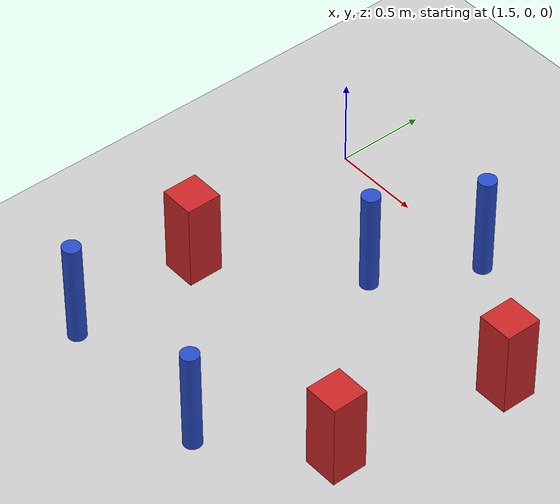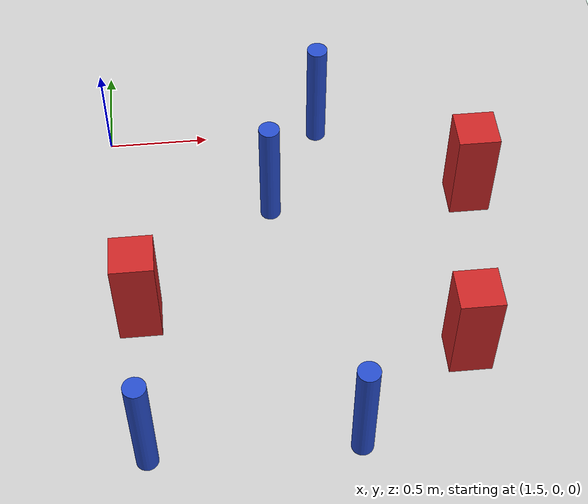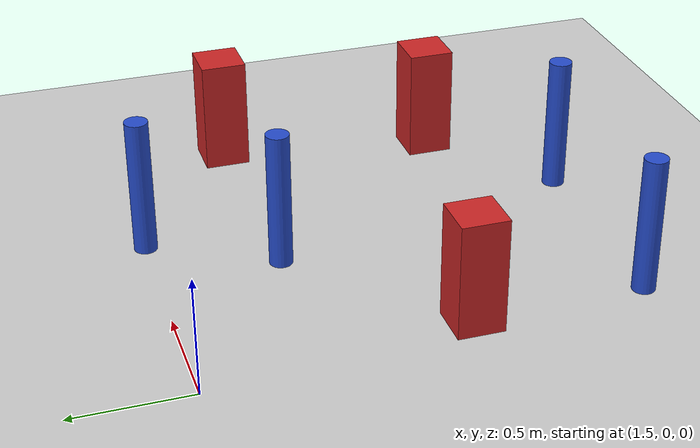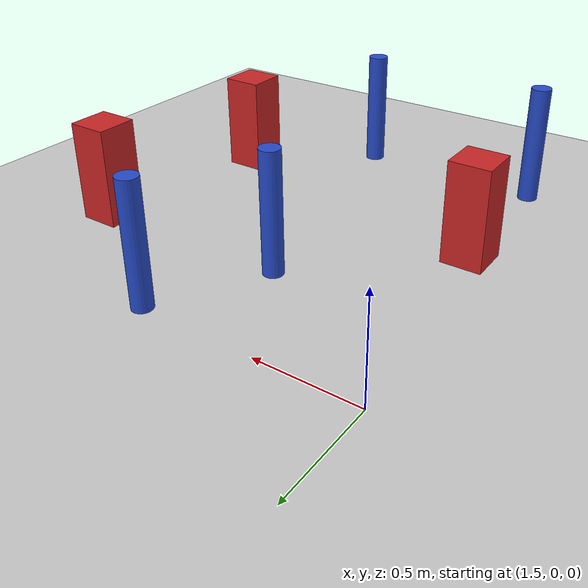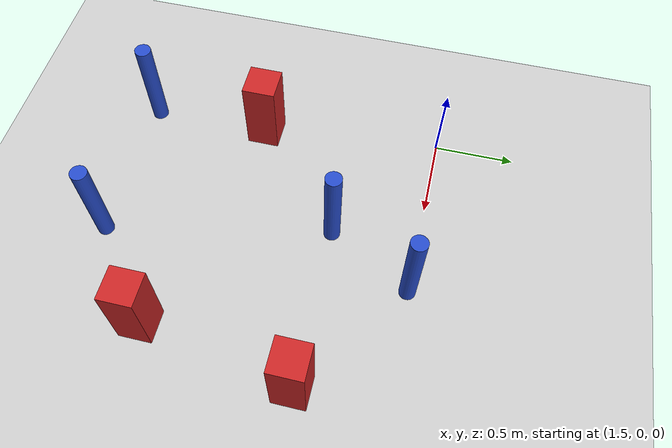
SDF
<sdf version="1.6">
 <world name="default">
  <model name="ground_plane">
   <static>1</static>
   <link name="link">
    <collision name="collision">
     <geometry><plane><normal>0 0 1</normal><size>100 100</size></plane></geometry>
     <surface><friction><ode><mu>100</mu><mu2>50</mu2></ode></friction></surface>
    </collision>
    <visual name="visual">
     <cast_shadows>0</cast_shadows>
     <geometry><plane><normal>0 0 1</normal><size>100 100</size></plane></geometry>
     <material>
      <ambient>1.0 1.0 1.0 1.0</ambient>
      <diffuse>0.8 0.8 0.8 1.0</diffuse>
      <specular>0.01 0.01 0.01 1.000000</specular>
     </material>
    </visual>
   </link>
  </model>
  <model name="pole_obstacle27">
   <static>true</static>
   <pose>2.58216904432 -1.89217607525 7.38925637345e-09 -8.471706928e-08 1.24976765152e-08 -1.74513093012e-07</pose>
   <link name="link">
    <pose>0 0 0.3 0 -0 0</pose>
    <inertial>
     <mass>1</mass>
     <inertia><ixx>0.145833</ixx><ixy>0</ixy><ixz>0</ixz><iyy>0.145833</iyy><iyz>0</iyz><izz>0.125</izz></inertia>
    </inertial>
    <collision name="collision">
     <geometry><cylinder><radius>0.05</radius><length>.6</length></cylinder></geometry>
    </collision>
    <visual name="visual">
     <geometry><cylinder><radius>0.05</radius><length>.6</length></cylinder></geometry>
     <material>
      <script><name>Gazebo/Blue</name><uri>file://media/materials/scripts/gazebo.material</uri></script>
     </material>
    </visual>
   </link>
  </model>
  <model name="square_post_obstacle23">
   <static>true</static>
   <pose>3.29476710435 -0.517945850544 1.91545236811e-07 -7.35059704564e-06 1.12565212e-07 2.39332434364e-05</pose>
   <link name="link">
    <pose>0 0 0.25 0 -0 0</pose>
    <inertial>
     <mass>100</mass>
     <inertia>
      <ixx>0.166667</ixx>
      <ixy>0</ixy>
      <ixz>0</ixz>
      <iyy>0.166667</iyy>
      <iyz>0</iyz>
      <izz>0.166667</izz>
     </inertia>
    </inertial>
    <collision name="collision"><geometry><box><size>.2 .2 .5</size></box></geometry></collision>
    <visual name="visual">
     <geometry><box><size>.2 .2 .5</size></box></geometry>
     <material>
      <script><name>Gazebo/Red</name><uri>file://media/materials/scripts/gazebo.material</uri></script>
     </material>
    </visual>
   </link>
  </model>
  <model name="square_post_obstacle63">
   <static>true</static>
   <pose>1.63152813365 -1.12639576349 1.91545236811e-07 -7.35059704564e-06 1.12565212e-07 2.39332434364e-05</pose>
   <link name="link">
    <pose>0 0 0.25 0 -0 0</pose>
    <inertial>
     <mass>100</mass>
     <inertia>
      <ixx>0.166667</ixx>
      <ixy>0</ixy>
      <ixz>0</ixz>
      <iyy>0.166667</iyy>
      <iyz>0</iyz>
      <izz>0.166667</izz>
     </inertia>
    </inertial>
    <collision name="collision"><geometry><box><size>.2 .2 .5</size></box></geometry></collision>
    <visual name="visual">
     <geometry><box><size>.2 .2 .5</size></box></geometry>
     <material>
      <script><name>Gazebo/Red</name><uri>file://media/materials/scripts/gazebo.material</uri></script>
     </material>
    </visual>
   </link>
  </model>
  <model name="pole_obstacle84">
   <static>true</static>
   <pose>2.29625827717 -0.527513924079 7.38925637345e-09 -8.471706928e-08 1.24976765186e-08 -1.74513093012e-07</pose>
   <link name="link">
    <pose>0 0 0.3 0 -0 0</pose>
    <inertial>
     <mass>1</mass>
     <inertia><ixx>0.145833</ixx><ixy>0</ixy><ixz>0</ixz><iyy>0.145833</iyy><iyz>0</iyz><izz>0.125</izz></inertia>
    </inertial>
    <collision name="collision">
     <geometry><cylinder><radius>0.05</radius><length>.6</length></cylinder></geometry>
    </collision>
    <visual name="visual">
     <geometry><cylinder><radius>0.05</radius><length>.6</length></cylinder></geometry>
     <material>
      <script><name>Gazebo/Blue</name><uri>file://media/materials/scripts/gazebo.material</uri></script>
     </material>
    </visual>
   </link>
  </model>
  <model name="pole_obstacle118">
   <static>true</static>
   <pose>1.64452792751 -1.87641165726 7.38925637345e-09 -8.471706928e-08 1.24976765079e-08 -1.74513093017e-07</pose>
   <link name="link">
    <pose>0 0 0.3 0 -0 0</pose>
    <inertial>
     <mass>1</mass>
     <inertia><ixx>0.145833</ixx><ixy>0</ixy><ixz>0</ixz><iyy>0.145833</iyy><iyz>0</iyz><izz>0.125</izz></inertia>
    </inertial>
    <collision name="collision">
     <geometry><cylinder><radius>0.05</radius><length>.6</length></cylinder></geometry>
    </collision>
    <visual name="visual">
     <geometry><cylinder><radius>0.05</radius><length>.6</length></cylinder></geometry>
     <material>
      <script><name>Gazebo/Blue</name><uri>file://media/materials/scripts/gazebo.material</uri></script>
     </material>
    </visual>
   </link>
  </model>
  <model name="pole_obstacle126">
   <static>true</static>
   <pose>2.58010467965 -0.0102880229091 7.38925637345e-09 -8.471706928e-08 1.24976765137e-08 -1.74513093014e-07</pose>
   <link name="link">
    <pose>0 0 0.3 0 -0 0</pose>
    <inertial>
     <mass>1</mass>
     <inertia><ixx>0.145833</ixx><ixy>0</ixy><ixz>0</ixz><iyy>0.145833</iyy><iyz>0</iyz><izz>0.125</izz></inertia>
    </inertial>
    <collision name="collision">
     <geometry><cylinder><radius>0.05</radius><length>.6</length></cylinder></geometry>
    </collision>
    <visual name="visual">
     <geometry><cylinder><radius>0.05</radius><length>.6</length></cylinder></geometry>
     <material>
      <script><name>Gazebo/Blue</name><uri>file://media/materials/scripts/gazebo.material</uri></script>
     </material>
    </visual>
   </link>
  </model>
  <model name="square_post_obstacle182">
   <static>true</static>
   <pose>3.12638604866 -1.45583190968 1.91545236811e-07 -7.35059704564e-06 1.12565212e-07 2.39332434364e-05</pose>
   <link name="link">
    <pose>0 0 0.25 0 -0 0</pose>
    <inertial>
     <mass>100</mass>
     <inertia>
      <ixx>0.166667</ixx>
      <ixy>0</ixy>
      <ixz>0</ixz>
      <iyy>0.166667</iyy>
      <iyz>0</iyz>
      <izz>0.166667</izz>
     </inertia>
    </inertial>
    <collision name="collision"><geometry><box><size>.2 .2 .5</size></box></geometry></collision>
    <visual name="visual">
     <geometry><box><size>.2 .2 .5</size></box></geometry>
     <material>
      <script><name>Gazebo/Red</name><uri>file://media/materials/scripts/gazebo.material</uri></script>
     </material>
    </visual>
   </link>
  </model>
 </world>
</sdf>
